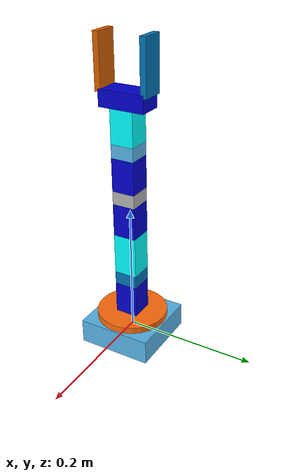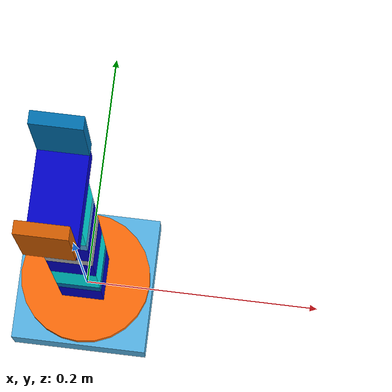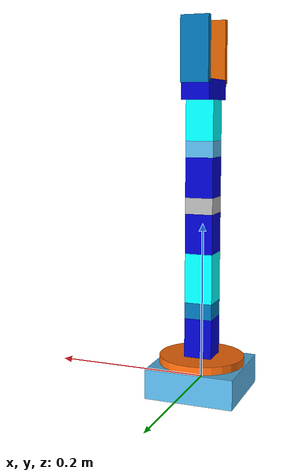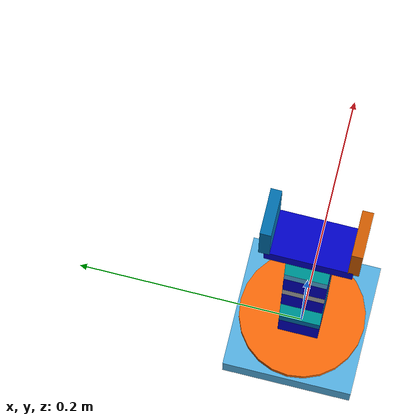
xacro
<?xml version="1.0"?>
<robot name="yes" xmlns:xacro="http://ros.org/wiki/xacro">

<xacro:include filename="$(find five_dof_robotarm)/urdf/materials.xacro" />

<!-- Base dimensions -->
<xacro:property name="basex" value="0.1143" />
<xacro:property name="basey" value="0.1143" />
<xacro:property name="basez" value="0.0381" />

<!-- Turntable dimensions -->
<xacro:property name="turntable_height" value="0.01" />
<xacro:property name="turntable_radius" value="0.055" />

<!-- Motor dimensions -->
<xacro:property name="motorx" value="0.0356" />
<xacro:property name="motory" value="0.0355" />
<xacro:property name="motorz" value="0.0506" />

<!-- Mounting plate dimensions -->
<xacro:property name="mpx" value="0.0356" />
<xacro:property name="mpy" value="0.0355" />
<xacro:property name="mpz" value="0.0206" />

<xacro:property name="girder_len" value="0.0635" />

<!-- Mass[kg] -->
<xacro:property name="mass_motor" value="0.126"/>
<xacro:property name="mass_mp" value="0.01"/> <!--Mass mounting plate-->
<xacro:property name="mass_tt" value="0.05"/> <!--Turntable-->

<!-- Operating limits(ol) [rad]-->
<xacro:property name="motor_ol" value="3.92"/><!--110deg 1.92 rad-->

<!-- Fixing robot to world frame-->
<link name="world">
  <origin xyz="0 0 -100" rpy="0 0 0"/>
</link>

<!-- Base -->
<link name="base_link">
  <visual>
    <geometry>
      <box size ="${basex} ${basey} ${basez}"/>
    </geometry>
    <origin xyz="0 0 0" rpy="0 0 0"/>
  </visual>
<inertial>
  <origin xyz="0 0 0" rpy="0 0 0"/>
  <mass value="2"/>
  <inertia ixx="1" ixy="0" ixz="0" iyy="1" iyz="0" izz="1" />
</inertial>
<collision>
  <origin xyz ="0 0 0"/>
  <geometry>
    <box size ="${basex} ${basey} ${basez}"/>
  </geometry>
</collision>
</link>

<joint name="fixed" type="fixed">
  <parent link="world"/>
  <child link="base_link"/>
</joint>

<link name="turntable">
  <visual>
    <geometry>
      <cylinder radius= "${turntable_radius}" length= "${turntable_height}"/>
    </geometry>
    <origin xyz ="0 0 0"/>
    <material name="orange"/>
  </visual>
  <collision>
    <origin xyz ="0 0 0"/>
    <geometry>
      <cylinder radius= "${turntable_radius}" length= "${turntable_height}"/>
    </geometry>
  </collision>
  <inertial>
     <origin xyz="0 0 0" rpy="0 0 0"/>
     <mass value="${mass_tt}"/>
     <inertia ixx="0.0082" ixy="0" ixz="0" iyy="0.0082" iyz="0" izz="0.0076" />
   </inertial>

</link>
<joint name="base_to_turntable" type="continuous">
  <parent link="base_link"/>
  <child link="turntable"/>
  <origin xyz="0 0 ${(basez+turntable_height)/2}"/>
  <axis xyz ="0 0 1"/>
</joint>

<!--Motor macro-->
<xacro:macro name="motor" params="prefix z_coord parent">
<link name="${prefix}_motor">
  <visual>
    <geometry>
      <box size ="${motorx} ${motory} ${motorz}"/>
    </geometry>
    <origin xyz ="0 0 ${motorz/2}"/>
    <material name="blue"/>
  </visual>
<collision>
  <origin xyz ="0 0 ${motorz/2}"/>
  <geometry>
    <box size ="${motorx} ${motory} ${motorz}"/>
  </geometry>
</collision>
<inertial>
   <origin xyz="0 0 ${motorz/2}" rpy="0 0 0"/>
   <mass value="${mass_motor}"/>
   <inertia ixx="0.004" ixy="0" ixz="0"
            iyy="0.004" iyz="0"
            izz="0.00456" />
 </inertial>
</link>
<joint name="${parent}_to_${prefix}_motor" type="fixed">
  <parent link="${parent}"/>
  <child link="${prefix}_motor"/>
  <origin xyz="0 0 ${z_coord}"/>
  <axis xyz ="1 0 0"/>
</joint>
</xacro:macro>

<!--Mounting plate macro-->
<xacro:macro name="mounting_plate" params="prefix z_coord parent angle">
<link name="${prefix}_mounting_plate">
  <visual>
    <geometry>
      <box size ="${mpx} ${mpy} ${mpz}"/>
    </geometry>
    <origin xyz ="0 0 ${mpz/2}" rpy="0 0 0"/>
  </visual>
<collision>
  <origin xyz ="0 0 ${mpz/2}"/>
  <geometry>
    <box size ="${mpx} ${mpy} ${mpz}"/>
  </geometry>
</collision>
<inertial>
   <origin xyz="0 0 ${mpz/2}" rpy="0 0 0"/>
   <mass value="${mass_mp}"/>
   <inertia ixx="0.00014" ixy="0" ixz="0"
            iyy="0.00014" iyz="0"
            izz="0.00021" />
 </inertial>
</link>
<joint name="${parent}_to_${prefix}_mounting_plate" type="revolute">
  <parent link="${parent}"/>
  <child link="${prefix}_mounting_plate"/>
  <origin xyz="0 0 ${z_coord}" rpy="${angle} 0 0" />
  <axis xyz ="1 0 0"/>
  <dynamics damping="1"/>
  <limit effort="10" lower="${-motor_ol}" upper="${motor_ol}" velocity="50"/>
</joint>

</xacro:macro>

<!-- Second joint -->
<xacro:motor prefix="second" z_coord="${turntable_height/2}" parent="turntable"/>
<xacro:mounting_plate prefix="first" z_coord="${motorz}" parent="second_motor" angle="0"/>

<!-- Girder -->
<link name="girder">
  <visual>
    <geometry>
      <box size ="${mpx} ${mpy} ${girder_len}"/>
    </geometry>
    <origin xyz ="0 0 ${girder_len/2}"/>
      <material name="cyan"/>
  </visual>
  <collision>
    <origin xyz ="0 0 ${girder_len/2}"/>
    <geometry>
      <box size ="${mpx} ${mpy} ${girder_len}"/>
    </geometry>
  </collision>
  <inertial>
     <origin xyz="0 0 ${girder_len/2}" rpy="0 0 0"/>
     <mass value="${mass_mp*3}"/>
     <inertia ixx="0.00176" ixy="0" ixz="0" iyy="0.00176" iyz="0" izz="0.000842" />
   </inertial>
</link>
<joint name="first_mounting_plate_to_girder" type="fixed">
  <parent link="first_mounting_plate"/>
  <child link="girder"/>
  <origin xyz="0 0 ${mpz}"/>
  <axis xyz ="1 0 0"/>
</joint>

<xacro:motor prefix="third" z_coord="${girder_len}" parent="girder"/>

<!-- Third joint  -->
<xacro:mounting_plate prefix="second" z_coord="${motorz}" parent="third_motor" angle="0"/>
<xacro:motor prefix="fourth" z_coord="${mpz}" parent="second_mounting_plate"/>

<!-- Fourth joint -->
<xacro:mounting_plate prefix="third" z_coord="${motorz}" parent="fourth_motor" angle="0"/>

<!-- Wrist rotate kit -->
<link name="wrist_rk">
  <visual>
    <geometry>
      <box size ="${mpx} ${mpy} ${motorz}"/>
    </geometry>
    <origin xyz ="0 0 ${motorz/2}"/>
      <material name="cyan"/>
  </visual>
  <collision>
    <origin xyz ="0 0 ${motorz/2}"/>
    <geometry>
      <box size ="${mpx} ${mpy} ${motorz}"/>
    </geometry>
  </collision>
  <inertial>
     <origin xyz="0 0 ${motorz/2}" rpy="0 0 0"/>
     <mass value="${mass_motor}"/>

     <inertia ixx="0.004" ixy="0" ixz="0"
              iyy="0.004" iyz="0"
              izz="0.00456" />

   </inertial>

</link>

<joint name="third_mounting_plate_to_wrist_rk" type="fixed">
  <parent link="third_mounting_plate"/>
  <child link="wrist_rk"/>
  <origin xyz="0 0 ${mpz}"/>
  <axis xyz ="0 0 1"/>
</joint>

<!-- Fifth joint  (Wrist)-->
<link name="wrist">
  <visual>
    <geometry>
      <box size ="${mpx} ${mpy*2} ${motorz/2}"/>
    </geometry>
    <origin xyz ="0 0 ${motorz/4}"/>
      <material name="blue"/>
  </visual>
  <collision>
    <origin xyz ="0 0 ${motorz/4}"/>
    <geometry>
      <box size ="${mpx} ${mpy*2} ${motorz/2}"/>
    </geometry>
  </collision>
  <inertial>
     <origin xyz="0 0 ${motorz/4}" rpy="0 0 0"/>
     <mass value="${mass_motor}"/>
     <!--inertia ixx="1" ixy="0" ixz="0" iyy="1" iyz="0" izz="1" /-->
     <inertia ixx="0.00473" ixy="0" ixz="0" iyy="0.00158" iyz="0" izz="0.00131" />

   </inertial>
</link>
<joint name="wrist_rk_to_wrist" type="continuous">
  <parent link="wrist_rk"/>
  <child link="wrist"/>
  <origin xyz="0 0 ${motorz}"/>
  <axis xyz ="0 0 1"/>
  <limit effort="10" lower="${-motor_ol}" upper="${motor_ol}" velocity="50"/>
</joint>

<!-- Gripper-->
<xacro:property name="finger_length" value="0.08" />
<xacro:property name="finger_width" value="0.0356" />
<xacro:property name="mass_finger" value="0.01" />

<xacro:macro name="finger" params="prefix invert">
<link name="${prefix}_finger">
  <visual>
    <geometry>
      <box size ="${finger_width} ${finger_width/4} ${finger_length}"/>
    </geometry>
    <origin xyz ="0 0 ${finger_length/2}"/>
  </visual>

  <collision>
    <origin xyz ="0 0 ${finger_length/2}"/>
    <geometry>
      <box size ="${finger_width} ${finger_width/4} ${finger_length}"/>
    </geometry>
  </collision>
  <inertial>
     <origin xyz="0 0 ${finger_length/2}" rpy="0 0 0"/>
     <mass value="${mass_finger}"/>
     <inertia ixx="0.0000001" ixy="0" ixz="0" iyy="0.0000001" iyz="0" izz="0.0000001" />
   </inertial>
</link>

<joint name="wrist_to_${prefix}_finger" type="fixed">
  <parent link="wrist"/>
  <child link="${prefix}_finger"/>
  <origin xyz="0 ${invert*mpy} ${mpz}"/>
   <limit effort="1000.0" lower="0.0" upper="${0.548*invert}" velocity="0.5"/>
  <axis xyz ="${invert} 0 0"/>
</joint>
</xacro:macro>

<xacro:finger prefix="right" invert="1"/>
<xacro:finger prefix="left" invert="-1"/>

<!--Control -->

<!-- First link control-->
<transmission name="turntable_trans">
  <type>transmisson_interface/SimpleTransmission</type>
  <actuator name="$turntable_motor">
  </actuator>
  <joint name="base_to_turntable">
    <hardwareInterface>hardware_interface/EffortJointInterface</hardwareInterface>
  </joint>
</transmission>

<!-- Second link control -->
<transmission name="joint2">
  <type>transmisson_interface/SimpleTransmission</type>
  <actuator name="joint2_motor">
  </actuator>
  <joint name="second_motor_to_first_mounting_plate">
    <hardwareInterface>hardware_interface/EffortJointInterface</hardwareInterface>
  </joint>
</transmission>

<!-- Third link control -->
<transmission name="joint3">
  <type>transmisson_interface/SimpleTransmission</type>
  <actuator name="joint3_motor">
  </actuator>
  <joint name="third_motor_to_second_mounting_plate">
    <hardwareInterface>hardware_interface/EffortJointInterface</hardwareInterface>
  </joint>
</transmission>

<!-- Fourth link control -->
<transmission name="joint4">
  <type>transmisson_interface/SimpleTransmission</type>
  <actuator name="joint4_motor">
  </actuator>
  <joint name="fourth_motor_to_third_mounting_plate">
    <hardwareInterface>hardware_interface/EffortJointInterface</hardwareInterface>
  </joint>
</transmission>

<!-- Fifth link control -->
<transmission name="joint5">
  <type>transmisson_interface/SimpleTransmission</type>
  <actuator name="joint5_motor">
  </actuator>
  <joint name="wrist_rk_to_wrist">
    <hardwareInterface>hardware_interface/EffortJointInterface</hardwareInterface>
  </joint>
</transmission>

<!-- Gazebo plugin for ROS Control -->
<gazebo>
   <plugin name="gazebo_ros_control" filename="libgazebo_ros_control.so">
     <robotNamespace>/five_dof_robotarm</robotNamespace>
   </plugin>
 </gazebo>

</robot>

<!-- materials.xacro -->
<robot>

  <material name="black">
    <color rgba="0.0 0.0 0.0 1.0"/>
  </material>

  <material name="blue">
    <color rgba="0.0 0.0 0.8 1.0"/>
  </material>

  <material name="green">
    <color rgba="0.0 0.8 0.0 1.0"/>
  </material>

  <material name="grey">
    <color rgba="0.2 0.2 0.2 1.0"/>
  </material>

  <material name="orange">
    <color rgba="${255/255} ${108/255} ${10/255} 1.0"/>
  </material>

  <material name="brown">
    <color rgba="${222/255} ${207/255} ${195/255} 1.0"/>
  </material>

  <material name="red">
    <color rgba="0.8 0.0 0.0 1.0"/>
  </material>

  <material name="white">
    <color rgba="1.0 1.0 1.0 1.0"/>
  </material>
  <material name="cyan">
     <color rgba="0 1 1 1"/>
  </material>

</robot>
